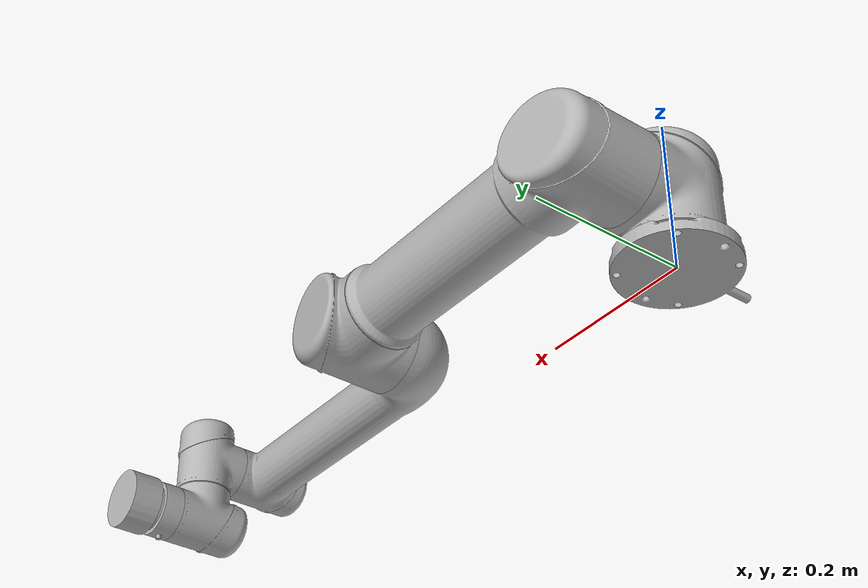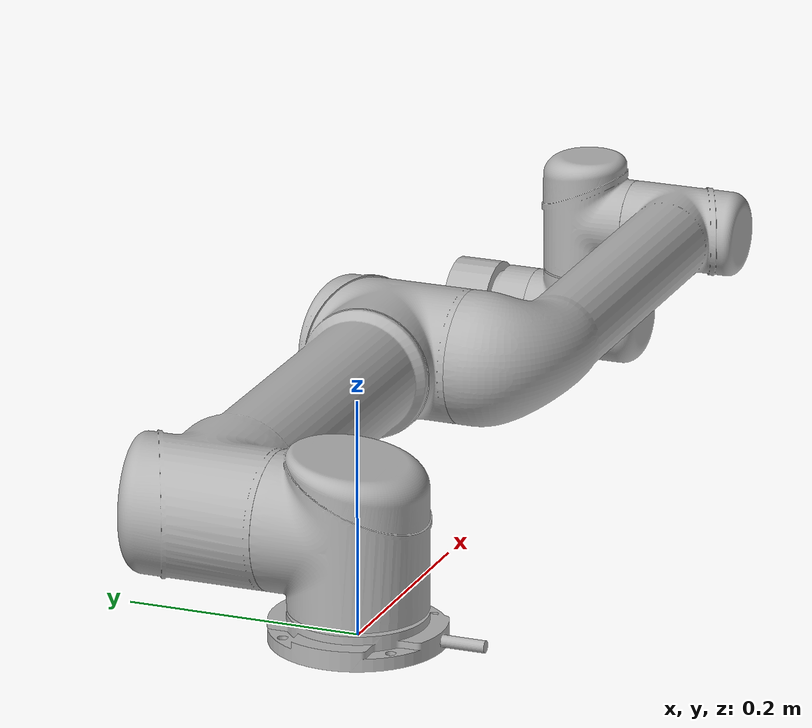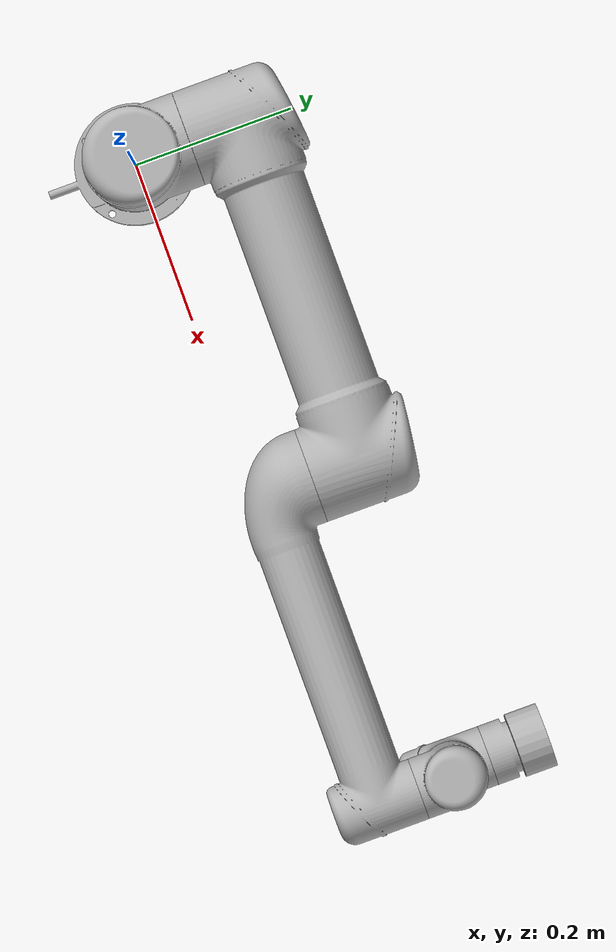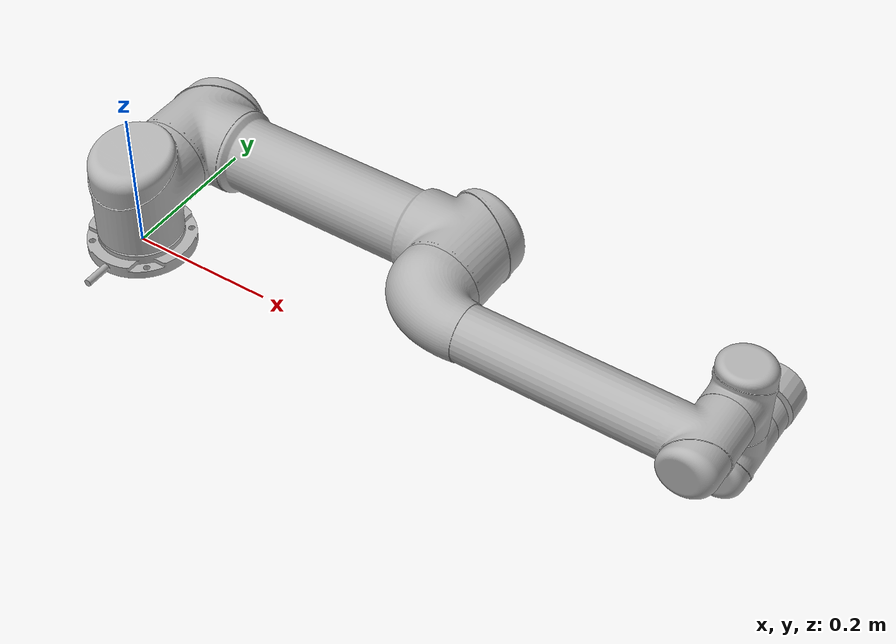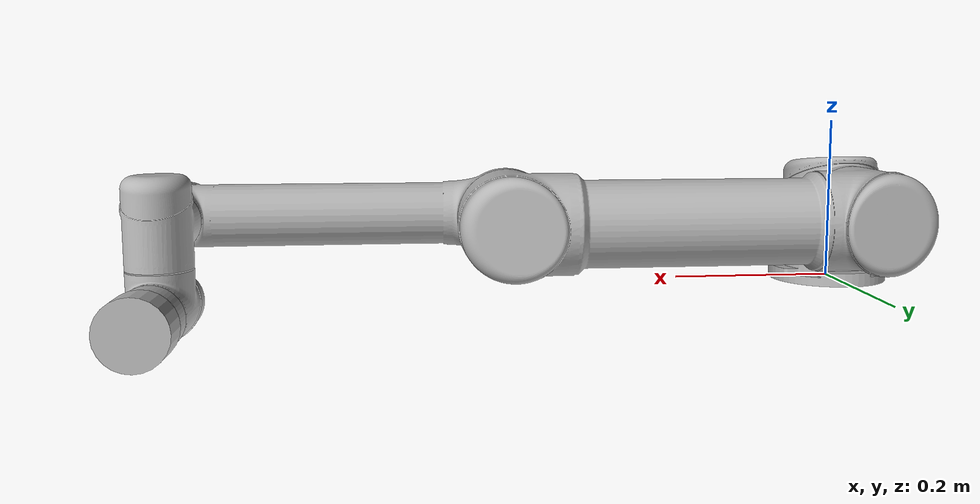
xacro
<?xml version="1.0"?>
<robot name="ur5" xmlns:xacro="http://ros.org/wiki/xacro">

  <!-- 注意这里用的是下载的ur_description,不是自己的包哦 -->
  <xacro:include filename="$(find ur5_bringup)/urdf/ur5_description.urdf.xacro" />

  <!-- Spawn arm -->
  <xacro:ur5_robot prefix="" joint_limited="false" />
  <xacro:ur5_gazebo prefix="" />
  <xacro:ur5_transmission prefix="" hw_interface="hardware_interface/PositionJointInterface"/>

  <!-- Join arm -->

</robot>

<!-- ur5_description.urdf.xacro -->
<robot xmlns:xacro="http://wiki.ros.org/xacro">

  <xacro:macro name="cylinder_inertial" params="radius length mass *origin">
    <inertial>
      <mass value="${mass}" />
      <xacro:insert_block name="origin" />
      <inertia ixx="${0.0833333 * mass * (3 * radius * radius + length * length)}" ixy="0.0" ixz="0.0"
        iyy="${0.0833333 * mass * (3 * radius * radius + length * length)}" iyz="0.0"
        izz="${0.5 * mass * radius * radius}" />
    </inertial>
  </xacro:macro>

  <xacro:macro name="ur5_robot" params="prefix joint_limited
    shoulder_pan_lower_limit:=${-pi}    shoulder_pan_upper_limit:=${pi}
    shoulder_lift_lower_limit:=${-pi}    shoulder_lift_upper_limit:=${pi}
    elbow_joint_lower_limit:=${-pi}    elbow_joint_upper_limit:=${pi}
    wrist_1_lower_limit:=${-pi}    wrist_1_upper_limit:=${pi}
    wrist_2_lower_limit:=${-pi}    wrist_2_upper_limit:=${pi}
    wrist_3_lower_limit:=${-pi}    wrist_3_upper_limit:=${pi}
    transmission_hw_interface:=hardware_interface/PositionJointInterface
    safety_limits:=false safety_pos_margin:=0.15
    safety_k_position:=20">

    <!-- Inertia parameters -->
    <xacro:property name="base_mass" value="4.0" />  <!-- This mass might be incorrect -->
    <xacro:property name="shoulder_mass" value="3.7000" />
    <xacro:property name="upper_arm_mass" value="8.3930" />
    <xacro:property name="forearm_mass" value="2.2750" />
    <xacro:property name="wrist_1_mass" value="1.2190" />
    <xacro:property name="wrist_2_mass" value="1.2190" />
    <xacro:property name="wrist_3_mass" value="0.1879" />

    <!-- Kinematic model -->
    <!-- Properties from urcontrol.conf -->
    <xacro:property name="d1" value="0.089159" />
    <xacro:property name="a2" value="-0.42500" />
    <xacro:property name="a3" value="-0.39225" />
    <xacro:property name="d4" value="0.10915" />
    <xacro:property name="d5" value="0.09465" />
    <xacro:property name="d6" value="0.0823" />

    <!-- Arbitrary offsets for shoulder/elbow joints -->
    <xacro:property name="shoulder_offset" value="0.13585" />  <!-- measured from model -->
    <xacro:property name="elbow_offset" value="-0.1197" /> <!-- measured from model -->

    <!-- link lengths used in model -->
    <xacro:property name="shoulder_height" value="${d1}" />
    <xacro:property name="upper_arm_length" value="${-a2}" />
    <xacro:property name="forearm_length" value="${-a3}" />
    <xacro:property name="wrist_1_length" value="${d4 - elbow_offset - shoulder_offset}" />
    <xacro:property name="wrist_2_length" value="${d5}" />
    <xacro:property name="wrist_3_length" value="${d6}" />
    <!--property name="shoulder_height" value="0.089159" /-->
    <!--property name="shoulder_offset" value="0.13585" /-->  <!-- shoulder_offset - elbow_offset + wrist_1_length = 0.10915 -->
    <!--property name="upper_arm_length" value="0.42500" /-->
    <!--property name="elbow_offset" value="0.1197" /-->       <!-- CAD measured -->
    <!--property name="forearm_length" value="0.39225" /-->
    <!--property name="wrist_1_length" value="0.093" /-->     <!-- CAD measured -->
    <!--property name="wrist_2_length" value="0.09465" /-->   <!-- In CAD this distance is 0.930, but in the spec it is 0.09465 -->
    <!--property name="wrist_3_length" value="0.0823" /-->

    <xacro:property name="shoulder_radius" value="0.060" />   <!-- manually measured -->
    <xacro:property name="upper_arm_radius" value="0.054" />  <!-- manually measured -->
    <xacro:property name="elbow_radius" value="0.060" />      <!-- manually measured -->
    <xacro:property name="forearm_radius" value="0.040" />    <!-- manually measured -->
    <xacro:property name="wrist_radius" value="0.045" />      <!-- manually measured -->

    <link name="${prefix}base_link" >
      <visual>
        <geometry>
          <mesh filename="package://ur_description/meshes/ur5/visual/base.dae" />
        </geometry>
        <material name="LightGrey">
          <color rgba="0.7 0.7 0.7 1.0"/>
        </material>
      </visual>
      <collision>
        <geometry>
          <mesh filename="package://ur_description/meshes/ur5/collision/base.stl" />
        </geometry>
      </collision>
      <xacro:cylinder_inertial radius="0.06" length="0.05" mass="${base_mass}">
        <origin xyz="0.0 0.0 0.0" rpy="0 0 0" />
      </xacro:cylinder_inertial>
    </link>

    <joint name="${prefix}shoulder_pan_joint" type="revolute">
      <parent link="${prefix}base_link" />
      <child link = "${prefix}shoulder_link" />
      <origin xyz="0.0 0.0 ${shoulder_height}" rpy="0.0 0.0 0.0" />
      <axis xyz="0 0 1" />
      <xacro:unless value="${joint_limited}">
        <limit lower="${-2.0 * pi}" upper="${2.0 * pi}" effort="150.0" velocity="3.15"/>
        <xacro:if value="${safety_limits}">
          <safety_controller soft_lower_limit="${-2.0 * pi + safety_pos_margin}" soft_upper_limit="${2.0 * pi - safety_pos_margin}" k_position="${safety_k_position}" k_velocity="0.0"/>
        </xacro:if>
      </xacro:unless>
      <xacro:if value="${joint_limited}">
        <limit lower="${shoulder_pan_lower_limit}" upper="${shoulder_pan_upper_limit}" effort="150.0" velocity="3.15"/>
        <xacro:if value="${safety_limits}">
          <safety_controller soft_lower_limit="${shoulder_pan_lower_limit + safety_pos_margin}" soft_upper_limit="${shoulder_pan_upper_limit - safety_pos_margin}" k_position="${safety_k_position}" k_velocity="0.0"/>
        </xacro:if>
      </xacro:if>
      <dynamics damping="0.0" friction="0.0"/>
    </joint>

    <link name="${prefix}shoulder_link">
      <visual>
        <geometry>
          <mesh filename="package://ur_description/meshes/ur5/visual/shoulder.dae" />
        </geometry>
        <material name="LightGrey">
          <color rgba="0.7 0.7 0.7 1.0"/>
        </material>
      </visual>
      <collision>
        <geometry>
          <mesh filename="package://ur_description/meshes/ur5/collision/shoulder.stl" />
        </geometry>
      </collision>
      <xacro:cylinder_inertial radius="0.06" length="0.15" mass="${shoulder_mass}">
        <origin xyz="0.0 0.0 0.0" rpy="0 0 0" />
      </xacro:cylinder_inertial>
    </link>

    <joint name="${prefix}shoulder_lift_joint" type="revolute">
      <parent link="${prefix}shoulder_link" />
      <child link = "${prefix}upper_arm_link" />
      <origin xyz="0.0 ${shoulder_offset} 0.0" rpy="0.0 ${pi / 2.0} 0.0" />
      <axis xyz="0 1 0" />
      <xacro:unless value="${joint_limited}">
        <limit lower="${-2.0 * pi}" upper="${2.0 * pi}" effort="150.0" velocity="3.15"/>
        <xacro:if value="${safety_limits}">
          <safety_controller soft_lower_limit="${-2.0 * pi + safety_pos_margin}" soft_upper_limit="${2.0 * pi - safety_pos_margin}" k_position="${safety_k_position}" k_velocity="0.0"/>
        </xacro:if>
      </xacro:unless>
      <xacro:if value="${joint_limited}">
        <limit lower="${shoulder_lift_lower_limit}" upper="${shoulder_lift_upper_limit}" effort="150.0" velocity="3.15"/>
        <xacro:if value="${safety_limits}">
          <safety_controller soft_lower_limit="${shoulder_lift_lower_limit + safety_pos_margin}" soft_upper_limit="${shoulder_lift_upper_limit - safety_pos_margin}" k_position="${safety_k_position}" k_velocity="0.0"/>
        </xacro:if>
      </xacro:if>
      <dynamics damping="0.0" friction="0.0"/>
    </joint>

    <link name="${prefix}upper_arm_link">
      <visual>
        <geometry>
          <mesh filename="package://ur_description/meshes/ur5/visual/upperarm.dae" />
        </geometry>
        <material name="LightGrey">
          <color rgba="0.7 0.7 0.7 1.0"/>
        </material>
      </visual>
      <collision>
        <geometry>
          <mesh filename="package://ur_description/meshes/ur5/collision/upperarm.stl" />
        </geometry>
      </collision>
      <xacro:cylinder_inertial radius="0.06" length="0.56" mass="${upper_arm_mass}">
        <origin xyz="0.0 0.0 0.28" rpy="0 0 0" />
      </xacro:cylinder_inertial>
    </link>

    <joint name="${prefix}elbow_joint" type="revolute">
      <parent link="${prefix}upper_arm_link" />
      <child link = "${prefix}forearm_link" />
      <origin xyz="0.0 ${elbow_offset} ${upper_arm_length}" rpy="0.0 0.0 0.0" />
      <axis xyz="0 1 0" />
      <xacro:unless value="${joint_limited}">
        <limit lower="${-pi}" upper="${pi}" effort="150.0" velocity="3.15"/>
        <xacro:if value="${safety_limits}">
          <safety_controller soft_lower_limit="${-2.0 * pi + safety_pos_margin}" soft_upper_limit="${2.0 * pi - safety_pos_margin}" k_position="${safety_k_position}" k_velocity="0.0"/>
        </xacro:if>
      </xacro:unless>
      <xacro:if value="${joint_limited}">
        <limit lower="${elbow_joint_lower_limit}" upper="${elbow_joint_upper_limit}" effort="150.0" velocity="3.15"/>
        <xacro:if value="${safety_limits}">
          <safety_controller soft_lower_limit="${elbow_joint_lower_limit + safety_pos_margin}" soft_upper_limit="${elbow_joint_upper_limit - safety_pos_margin}" k_position="${safety_k_position}" k_velocity="0.0"/>
        </xacro:if>
      </xacro:if>
      <dynamics damping="0.0" friction="0.0"/>
    </joint>

    <link name="${prefix}forearm_link">
      <visual>
        <geometry>
          <mesh filename="package://ur_description/meshes/ur5/visual/forearm.dae" />
        </geometry>
        <material name="LightGrey">
          <color rgba="0.7 0.7 0.7 1.0"/>
        </material>
      </visual>
      <collision>
        <geometry>
          <mesh filename="package://ur_description/meshes/ur5/collision/forearm.stl" />
        </geometry>
      </collision>
      <xacro:cylinder_inertial radius="0.06" length="${-a3}" mass="${forearm_mass}">
        <origin xyz="0.0 0.0 ${-a3/2}" rpy="0 0 0" />
      </xacro:cylinder_inertial>
    </link>

    <joint name="${prefix}wrist_1_joint" type="revolute">
      <parent link="${prefix}forearm_link" />
      <child link = "${prefix}wrist_1_link" />
      <origin xyz="0.0 0.0 ${forearm_length}" rpy="0.0 ${pi / 2.0} 0.0" />
      <axis xyz="0 1 0" />
      <xacro:unless value="${joint_limited}">
        <limit lower="${-2.0 * pi}" upper="${2.0 * pi}" effort="28.0" velocity="3.2"/>
        <xacro:if value="${safety_limits}">
          <safety_controller soft_lower_limit="${-2.0 * pi + safety_pos_margin}" soft_upper_limit="${2.0 * pi - safety_pos_margin}" k_position="${safety_k_position}" k_velocity="0.0"/>
        </xacro:if>
      </xacro:unless>
      <xacro:if value="${joint_limited}">
        <limit lower="${wrist_1_lower_limit}" upper="${wrist_1_upper_limit}" effort="28.0" velocity="3.2"/>
        <xacro:if value="${safety_limits}">
          <safety_controller soft_lower_limit="${wrist_1_lower_limit + safety_pos_margin}" soft_upper_limit="${wrist_1_upper_limit - safety_pos_margin}" k_position="${safety_k_position}" k_velocity="0.0"/>
        </xacro:if>
      </xacro:if>
      <dynamics damping="0.0" friction="0.0"/>
    </joint>

    <link name="${prefix}wrist_1_link">
      <visual>
        <geometry>
          <mesh filename="package://ur_description/meshes/ur5/visual/wrist1.dae" />
        </geometry>
        <material name="LightGrey">
          <color rgba="0.7 0.7 0.7 1.0"/>
        </material>
      </visual>
      <collision>
        <geometry>
          <mesh filename="package://ur_description/meshes/ur5/collision/wrist1.stl" />
        </geometry>
      </collision>
      <xacro:cylinder_inertial radius="0.06" length="0.12" mass="${wrist_1_mass}">
        <origin xyz="0.0 ${wrist_1_length} 0.0" rpy="0 0 0" />
      </xacro:cylinder_inertial>
    </link>

    <joint name="${prefix}wrist_2_joint" type="revolute">
      <parent link="${prefix}wrist_1_link" />
      <child link = "${prefix}wrist_2_link" />
      <origin xyz="0.0 ${wrist_1_length} 0.0" rpy="0.0 0.0 0.0" />
      <axis xyz="0 0 1" />
      <xacro:unless value="${joint_limited}">
        <limit lower="${-2.0 * pi}" upper="${2.0 * pi}" effort="28.0" velocity="3.2"/>
        <xacro:if value="${safety_limits}">
          <safety_controller soft_lower_limit="${-2.0 * pi + safety_pos_margin}" soft_upper_limit="${2.0 * pi - safety_pos_margin}" k_position="${safety_k_position}" k_velocity="0.0"/>
        </xacro:if>
      </xacro:unless>
      <xacro:if value="${joint_limited}">
        <limit lower="${wrist_2_lower_limit}" upper="${wrist_2_upper_limit}" effort="28.0" velocity="3.2"/>
        <xacro:if value="${safety_limits}">
          <safety_controller soft_lower_limit="${wrist_2_lower_limit + safety_pos_margin}" soft_upper_limit="${wrist_2_upper_limit - safety_pos_margin}" k_position="${safety_k_position}" k_velocity="0.0"/>
        </xacro:if>
      </xacro:if>
      <dynamics damping="0.0" friction="0.0"/>
    </joint>

    <link name="${prefix}wrist_2_link">
      <visual>
        <geometry>
          <mesh filename="package://ur_description/meshes/ur5/visual/wrist2.dae" />
        </geometry>
        <material name="LightGrey">
          <color rgba="0.7 0.7 0.7 1.0"/>
        </material>
      </visual>
      <collision>
        <geometry>
          <mesh filename="package://ur_description/meshes/ur5/collision/wrist2.stl" />
        </geometry>
      </collision>
      <xacro:cylinder_inertial radius="0.06" length="0.12" mass="${wrist_2_mass}">
        <origin xyz="0.0 0.0 ${wrist_2_length}" rpy="0 0 0" />
      </xacro:cylinder_inertial>
    </link>

    <joint name="${prefix}wrist_3_joint" type="revolute">
      <parent link="${prefix}wrist_2_link" />
      <child link = "${prefix}wrist_3_link" />
      <origin xyz="0.0 0.0 ${wrist_2_length}" rpy="0.0 0.0 0.0" />
      <axis xyz="0 1 0" />
      <xacro:unless value="${joint_limited}">
        <limit lower="${-2.0 * pi}" upper="${2.0 * pi}" effort="28.0" velocity="3.2"/>
        <xacro:if value="${safety_limits}">
          <safety_controller soft_lower_limit="${-2.0 * pi + safety_pos_margin}" soft_upper_limit="${2.0 * pi - safety_pos_margin}" k_position="${safety_k_position}" k_velocity="0.0"/>
        </xacro:if>
      </xacro:unless>
      <xacro:if value="${joint_limited}">
        <limit lower="${wrist_3_lower_limit}" upper="${wrist_3_upper_limit}" effort="28.0" velocity="3.2"/>
        <xacro:if value="${safety_limits}">
          <safety_controller soft_lower_limit="${wrist_3_lower_limit + safety_pos_margin}" soft_upper_limit="${wrist_3_upper_limit - safety_pos_margin}" k_position="${safety_k_position}" k_velocity="0.0"/>
        </xacro:if>
      </xacro:if>
      <dynamics damping="0.0" friction="0.0"/>
    </joint>

    <link name="${prefix}wrist_3_link">
      <visual>
        <geometry>
          <mesh filename="package://ur_description/meshes/ur5/visual/wrist3.dae" />
        </geometry>
        <material name="LightGrey">
          <color rgba="0.7 0.7 0.7 1.0"/>
        </material>
      </visual>
      <collision>
        <geometry>
          <mesh filename="package://ur_description/meshes/ur5/collision/wrist3.stl" />
        </geometry>
      </collision>
      <xacro:cylinder_inertial radius="0.0375" length="0.0345" mass="${wrist_3_mass}">
        <origin xyz="0.0 ${wrist_3_length - 0.0345/2} 0.0" rpy="${pi/2} 0 0" />
      </xacro:cylinder_inertial>
    </link>

    <joint name="${prefix}ee_fixed_joint" type="fixed">
      <parent link="${prefix}wrist_3_link" />
      <child link = "${prefix}ee_link" />
      <origin xyz="0.0 ${wrist_3_length} 0.0" rpy="0.0 0.0 ${pi/2.0}" />
    </joint>

    <link name="${prefix}ee_link">
      <collision>
        <geometry>
          <box size="0.01 0.01 0.01"/>
        </geometry>
        <origin rpy="0 0 0" xyz="-0.01 0 0"/>
      </collision>
    </link>

    <!-- ROS base_link to UR 'Base' Coordinates transform -->
      <!-- NOTE: this rotation is only needed as long as base_link itself is
                 not corrected wrt the real robot (ie: rotated over 180
                 degrees)
      -->

    <link name="FT_link">
      <visual>
        <geometry>
          <cylinder length="0.04" radius="0.04"/>
        </geometry>
        <material name="white">
          <color rgba="0.7 0.7 0.7 1.0"/>
        </material>
      </visual>

      <collision>
        <geometry>
          <cylinder length="0.04" radius="0.035"/>
        </geometry>
      </collision>
    </link>

    <joint name="FT_joint" type="fixed">
      <origin xyz="0.02 0 0" rpy="0 1.57 0" />
      <parent link="ee_link" />
      <child link="FT_link" />
    </joint>

  </xacro:macro>

  <xacro:macro name="ur5_gazebo" params="prefix">

    <gazebo reference="${prefix}shoulder_link">
      <selfCollide>true</selfCollide>
    </gazebo>
    <gazebo reference="${prefix}upper_arm_link">
      <selfCollide>true</selfCollide>
    </gazebo>
    <gazebo reference="${prefix}forearm_link">
      <selfCollide>true</selfCollide>
    </gazebo>
    <gazebo reference="${prefix}wrist_1_link">
      <selfCollide>true</selfCollide>
    </gazebo>
    <gazebo reference="${prefix}wrist_3_link">
      <selfCollide>true</selfCollide>
    </gazebo>
    <gazebo reference="${prefix}wrist_2_link">
      <selfCollide>true</selfCollide>
    </gazebo>
    <gazebo reference="${prefix}ee_link">
      <selfCollide>true</selfCollide>
    </gazebo>

  </xacro:macro>

  <xacro:macro name="ur5_transmission" params="prefix hw_interface">

    <transmission name="${prefix}shoulder_pan_trans">
      <type>transmission_interface/SimpleTransmission</type>
      <joint name="${prefix}shoulder_pan_joint">
        <hardwareInterface>${hw_interface}</hardwareInterface>
      </joint>
      <actuator name="${prefix}shoulder_pan_motor">
        <mechanicalReduction>1</mechanicalReduction>
      </actuator>
    </transmission>

    <transmission name="${prefix}shoulder_lift_trans">
      <type>transmission_interface/SimpleTransmission</type>
      <joint name="${prefix}shoulder_lift_joint">
        <hardwareInterface>${hw_interface}</hardwareInterface>
      </joint>
      <actuator name="${prefix}shoulder_lift_motor">
        <mechanicalReduction>1</mechanicalReduction>
      </actuator>
    </transmission>

    <transmission name="${prefix}elbow_trans">
      <type>transmission_interface/SimpleTransmission</type>
      <joint name="${prefix}elbow_joint">
        <hardwareInterface>${hw_interface}</hardwareInterface>
      </joint>
      <actuator name="${prefix}elbow_motor">
        <mechanicalReduction>1</mechanicalReduction>
      </actuator>
    </transmission>

    <transmission name="${prefix}wrist_1_trans">
      <type>transmission_interface/SimpleTransmission</type>
      <joint name="${prefix}wrist_1_joint">
        <hardwareInterface>${hw_interface}</hardwareInterface>
      </joint>
      <actuator name="${prefix}wrist_1_motor">
        <mechanicalReduction>1</mechanicalReduction>
      </actuator>
    </transmission>

    <transmission name="${prefix}wrist_2_trans">
      <type>transmission_interface/SimpleTransmission</type>
      <joint name="${prefix}wrist_2_joint">
        <hardwareInterface>${hw_interface}</hardwareInterface>
      </joint>
      <actuator name="${prefix}wrist_2_motor">
        <mechanicalReduction>1</mechanicalReduction>
      </actuator>
    </transmission>

    <transmission name="${prefix}wrist_3_trans">
      <type>transmission_interface/SimpleTransmission</type>
      <joint name="${prefix}wrist_3_joint">
        <hardwareInterface>${hw_interface}</hardwareInterface>
      </joint>
      <actuator name="${prefix}wrist_3_motor">
        <mechanicalReduction>1</mechanicalReduction>
      </actuator>
    </transmission>

  </xacro:macro>

  <gazebo>
    <plugin name="gazebo_ros_control" filename="libgazebo_ros_control.so">
      <robotNamespace>/</robotNamespace>
      <legacyModeNS>true</legacyModeNS>
    </plugin>
  </gazebo>
</robot>
